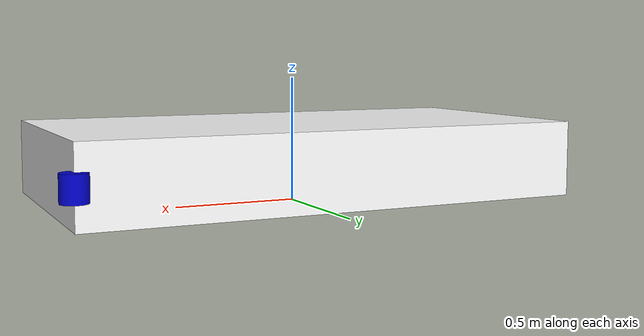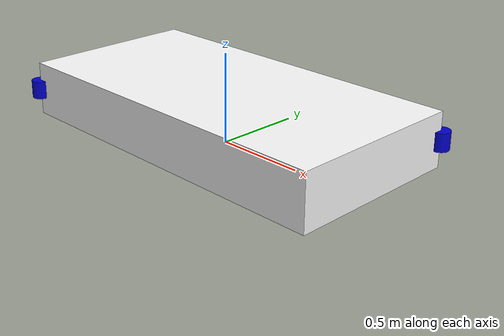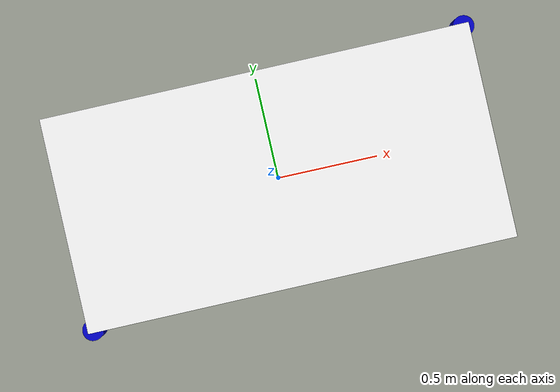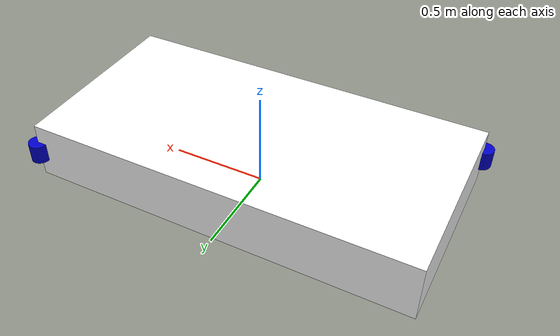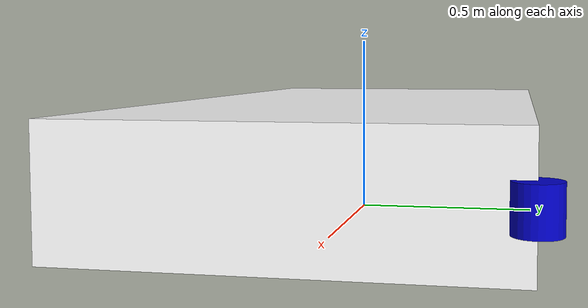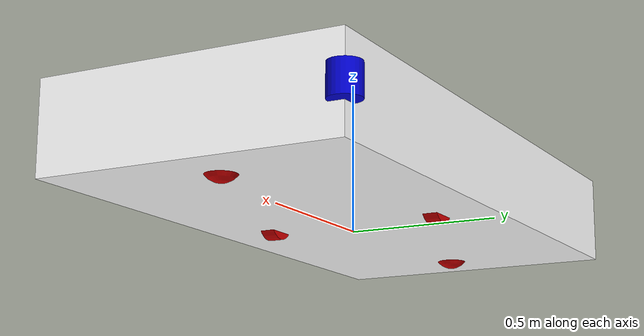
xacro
<?xml version="1.0"?>
<robot xmlns:xacro="http://www.ros.org/wiki/xacro" name="diff_vehicle">
    <!-- VEHICLE DIMENSIONS -->
    <xacro:property name="vehicle_length" value="2.0" />
    <xacro:property name="vehicle_width" value="1.0" />
    <xacro:property name="vehicle_height" value="0.3" />
    <xacro:property name="ground_clearance" value="0.025" />

    <!-- WHEEL SETUP -->
    <xacro:property name="wheel_diameter" value="0.13" />
    <xacro:property name="wheel_width" value="0.05" />

    <xacro:property name="wheel_0_origin_x" value="0.0" />
    <xacro:property name="wheel_0_origin_y" value="${0.3 * vehicle_width}" />
    <xacro:property name="wheel_0_origin_z" value="${-(ground_clearance + vehicle_height / 2 - wheel_diameter / 2)}" />

    <xacro:property name="wheel_1_origin_x" value="0.0" />
    <xacro:property name="wheel_1_origin_y" value="${-0.3 * vehicle_width}" />
    <xacro:property name="wheel_1_origin_z" value="${-(ground_clearance + vehicle_height / 2 - wheel_diameter / 2)}" />

    <xacro:property name="roller_0_origin_x" value="${0.4 * vehicle_length}" />
    <xacro:property name="roller_0_origin_y" value="0.0" />
    <xacro:property name="roller_0_origin_z" value="${-(ground_clearance + vehicle_height / 2 - wheel_diameter / 2)}" />

    <xacro:property name="roller_1_origin_x" value="${-0.4 * vehicle_length}" />
    <xacro:property name="roller_1_origin_y" value="0.0" />
    <xacro:property name="roller_1_origin_z" value="${-(ground_clearance + vehicle_height / 2 - wheel_diameter / 2)}" />

    <!-- SENSOR SETUP -->
    <xacro:property name="scanner_0_origin_x" value="${0.5 * vehicle_length}" />
    <xacro:property name="scanner_0_origin_y" value="${0.5 * vehicle_width}" />
    <xacro:property name="scanner_0_origin_z" value="0.0" />

    <xacro:property name="scanner_1_origin_x" value="${-0.5 * vehicle_length}" />
    <xacro:property name="scanner_1_origin_y" value="${-0.5 * vehicle_width}" />
    <xacro:property name="scanner_1_origin_z" value="0.0" />

    <!-- GAZEBO INCLUDE -->
    <xacro:include filename="$(find diff_description)/urdf/main.gazebo.xacro" />

    <!-- COMMON INCLUDES -->
    <xacro:include filename="$(find common_description)/urdf/colors.xacro" />
    <xacro:include filename="$(find common_description)/urdf/constants.xacro" />
    <xacro:include filename="$(find common_description)/urdf/driven_wheel.urdf.xacro" />
    <xacro:include filename="$(find common_description)/urdf/free_wheel.urdf.xacro" />
    <xacro:include filename="$(find common_description)/urdf/sensors/sick_nanoscan3.urdf.xacro" />
    <xacro:include filename="$(find common_description)/urdf/sensors/unknown_imu.urdf.xacro" />

    <!-- SD VEHICLE INCLUDES -->
    <xacro:include filename="$(find diff_description)/urdf/base.urdf.xacro" />

    <!-- BASE -->
    <xacro:base_setup />

    <!-- DRIVEN WHEELS -->
    <xacro:driven_wheel name="left_wheel" parent="base_link">
        <origin xyz="${wheel_0_origin_x} ${wheel_0_origin_y} ${wheel_0_origin_z}" rpy="${M_PI / 2} ${M_PI / 2} ${M_PI}" />
    </xacro:driven_wheel>

    <xacro:driven_wheel name="right_wheel" parent="base_link">
        <origin xyz="${wheel_1_origin_x} ${wheel_1_origin_y} ${wheel_1_origin_z}" rpy="${M_PI / 2} ${M_PI / 2} ${M_PI}" />
    </xacro:driven_wheel>

    <!-- FREE WHEELS -->
    <xacro:free_wheel name="front_roller" parent="base_link">
        <origin xyz="${roller_0_origin_x} ${roller_0_origin_y} ${roller_0_origin_z}" rpy="0.0 0.0 0.0" />
    </xacro:free_wheel>

    <xacro:free_wheel name="rear_roller" parent="base_link">
        <origin xyz="${roller_1_origin_x} ${roller_1_origin_y} ${roller_1_origin_z}" rpy="0.0 0.0 0.0" />
    </xacro:free_wheel>

    <!-- SENSORS -->
    <xacro:sick_nanoscan3 name="front_scanner" parent="base_link" ros_topic="scan_front">
        <origin xyz="${scanner_0_origin_x} ${scanner_0_origin_y} ${scanner_0_origin_z}" rpy="0.0 0.0 ${-0.5 * M_PI}"/>
    </xacro:sick_nanoscan3>

    <xacro:sick_nanoscan3 name="rear_scanner" parent="base_link" ros_topic="scan_rear">
        <origin xyz="${scanner_1_origin_x} ${scanner_1_origin_y} ${scanner_1_origin_z}" rpy="0.0 0.0 ${0.5 * M_PI}"/>
    </xacro:sick_nanoscan3>

    <xacro:unknown_imu name="imu" parent="base_link" ros_topic="imu">
        <origin xyz="0.0 0.0 0.0" rpy="0.0 0.0 0.0"/>
    </xacro:unknown_imu>

</robot>

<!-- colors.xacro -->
<!-- Source: https://github.com/ROBOTIS-GIT/turtlebot3/blob/master/turtlebot3_description/urdf/common_properties.xacro-->

<robot name="xacro_properties" xmlns:xacro="http://ros.org/wiki/xacro">

  <!-- Init colour -->
  <material name="black">
      <color rgba="0.0 0.0 0.0 1.0"/>
  </material>

  <material name="dark">
    <color rgba="0.3 0.3 0.3 1.0"/>
  </material>
  <material name="light_black">
    <color rgba="0.4 0.4 0.4 1.0"/>
  </material>

  <material name="blue">
    <color rgba="0.0 0.0 0.8 1.0"/>
  </material>

  <material name="green">
    <color rgba="0.0 0.8 0.0 1.0"/>
  </material>

  <material name="grey">
    <color rgba="0.5 0.5 0.5 1.0"/>
  </material>

  <material name="orange">
    <color rgba="${255/255} ${108/255} ${10/255} 1.0"/>
  </material>

  <material name="brown">
    <color rgba="${222/255} ${207/255} ${195/255} 1.0"/>
  </material>

  <material name="red">
    <color rgba="0.8 0.0 0.0 1.0"/>
  </material>

  <material name="white">
    <color rgba="1.0 1.0 1.0 1.0"/>
  </material>
</robot>

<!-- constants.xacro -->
<robot xmlns:xacro="http://www.ros.org/wiki/xacro">

    <xacro:property name="M_PI" value="3.14159265359" />

</robot>

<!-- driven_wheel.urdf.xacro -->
<robot xmlns:xacro="http://www.ros.org/wiki/xacro">

    <xacro:macro name="driven_wheel" params="name parent *origin">
        <link name="${name}_drive_link">
            <inertial>
                <mass value="0.001" />
                <origin xyz="0 0 0" rpy="0 0 0" />
                <inertia ixx="0.0001" ixy="0" ixz="0" iyy="0.000001" iyz="0" izz="0.0001" />
            </inertial>

            <visual>
                <origin xyz="0.0 0.0 0.0" rpy="0.0 0.0 0.0"/>
                <geometry>
                    <!--mesh filename="file:///$(find pia-description)/meshes/mecanum_wheel_right.stl" scale="0.001 0.001 0.001"/-->
                    <cylinder radius="${wheel_diameter / 2}" length="${wheel_width}" />
                </geometry>
                <material name="red" />
            </visual>

            <collision>
                <origin xyz="0.0 0.0 0.0" rpy="0.0 0.0 0.0"/>
                <geometry>
                    <cylinder radius="${wheel_diameter / 2}" length="${wheel_width}" />
                </geometry>
            </collision>
        </link>

        <joint name="${name}_drive_joint" type="continuous">
            <parent link="${parent}"/>
            <child link="${name}_drive_link"/>
            <xacro:insert_block name="origin" />
            <axis xyz="0 0 1" />
        </joint>
    </xacro:macro>
</robot>

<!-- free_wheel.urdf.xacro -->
<robot xmlns:xacro="http://www.ros.org/wiki/xacro">

    <xacro:macro name="free_wheel" params="name parent *origin">
        <link name="${name}_link">
            <inertial>
                <mass value="0.001" />
                <origin xyz="0 0 0" rpy="0 0 0" />
                <inertia ixx="0.0001" ixy="0" ixz="0" iyy="0.000001" iyz="0" izz="0.0001" />
            </inertial>

            <visual>
                <origin xyz="0.0 0.0 0.0" rpy="0.0 0.0 0.0"/>
                <geometry>
                    <!--mesh filename="file:///$(find pia-description)/meshes/mecanum_wheel_right.stl" scale="0.001 0.001 0.001"/-->
                    <sphere radius="${wheel_diameter / 2}" />
                </geometry>
                <material name="red" />
            </visual>

            <collision>
                <origin xyz="0.0 0.0 0.0" rpy="0.0 0.0 0.0"/>
                <geometry>
                    <sphere radius="${wheel_diameter / 2}" />
                </geometry>
            </collision>
        </link>

        <joint name="${name}_joint" type="fixed">
            <parent link="${parent}"/>
            <child link="${name}_link"/>
            <xacro:insert_block name="origin" />
        </joint>
    </xacro:macro>
</robot>

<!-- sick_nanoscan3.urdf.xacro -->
<robot xmlns:xacro="http://www.ros.org/wiki/xacro">

    <xacro:include filename="$(find common_description)/urdf/sensors/laser_scanner.gazebo.xacro" />

    <xacro:macro name="sick_nanoscan3" params="name parent *origin ros_topic">
        <xacro:property name="update_rate" value="25.0" />
        <!--xacro:property name="min_angle" value="${-0.131944444 * 2 * M_PI}" /-->
        <!--xacro:property name="max_angle" value="${0.631944444 * 2 * M_PI}" /-->
        <xacro:property name="min_angle" value="0.0" />
        <xacro:property name="max_angle" value="${0.763888889 * 2 * M_PI}" />
        <xacro:property name="samples" value="2200" />

        <joint name="${name}_joint" type="fixed">
            <xacro:insert_block name="origin" />
            <parent link="${parent}"/>
            <child link="${name}_link"/>
        </joint>

        <link name="${name}_link" type="fixed">
            <visual>
                <origin xyz="0.0 0.0 0.0" rpy="0.0 0.0 0.0"/>
                <geometry>
                    <!--mesh filename="file:///$(find pia-description)/meshes/mecanum_wheel_right.stl" scale="0.001 0.001 0.001"/-->
                    <cylinder radius="0.05" length="0.10" />
                </geometry>
                <material name="blue" />
            </visual>
            <inertial>
                <mass value="0.001" />
                <origin xyz="0 0 0" rpy="0 0 0" />
                <inertia ixx="0.0001" ixy="0" ixz="0" iyy="0.000001" iyz="0" izz="0.0001" />
            </inertial>
        </link>
        <!-- gazebo extensions -->
        <xacro:laser_scanner_gazebo name="${name}" ros_topic="${ros_topic}" update_rate="${update_rate}" min_angle="${min_angle}" max_angle="${max_angle}" samples="${samples}" />
    </xacro:macro>
</robot>

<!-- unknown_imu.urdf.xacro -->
<robot xmlns:xacro="http://www.ros.org/wiki/xacro">

    <xacro:include filename="$(find common_description)/urdf/sensors/imu.gazebo.xacro" />

    <xacro:macro name="unknown_imu" params="name parent *origin ros_topic">
        <xacro:property name="update_rate" value="50.0" />

        <joint name="${name}_joint" type="fixed">
            <xacro:insert_block name="origin" />
            <parent link="${parent}"/>
            <child link="${name}_link"/>
        </joint>

        <link name="${name}_link" type="fixed">
            <visual>
                <origin xyz="0.0 0.0 0.0" rpy="0.0 0.0 0.0"/>
                <geometry>
                    <!--mesh filename="file:///$(find pia-description)/meshes/mecanum_wheel_right.stl" scale="0.001 0.001 0.001"/-->
                    <box size="0.05 0.05 0.01" />
                </geometry>
                <material name="blue" />
            </visual>
            <inertial>
                <mass value="0.001" />
                <origin xyz="0 0 0" rpy="0 0 0" />
                <inertia ixx="0.0001" ixy="0" ixz="0" iyy="0.000001" iyz="0" izz="0.0001" />
            </inertial>
        </link>
        <!-- gazebo extensions -->
        <xacro:imu_gazebo name="${name}" ros_topic="${ros_topic}" update_rate="${update_rate}" />
    </xacro:macro>
</robot>

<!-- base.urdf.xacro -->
<robot xmlns:xacro="http://www.ros.org/wiki/xacro">

    <!--xacro:macro name="base_setup" params="vehicle_length vehicle_width vehicle_height ground_clearance"-->
    <xacro:macro name="base_setup">
        <link name="base_footprint" />

        <joint name="base_joint" type="fixed">
            <parent link="base_footprint" />
            <child link="base_link" />
            <origin xyz="0.0 0.0 ${vehicle_height / 2 + ground_clearance}" rpy="0.0 0.0 0.0" />
        </joint>

        <link name="base_link">
            <visual>
                <origin xyz="0.0 0 0.0" rpy="0.0 0.0 0.0" />
                <geometry>
                    <!--mesh filename="package://turtlebot3_description/meshes/bases/burger_base.stl" scale="0.001 0.001 0.001"/-->
                    <box size="${vehicle_length} ${vehicle_width} ${vehicle_height}" />
                </geometry>
                <material name="white" />
            </visual>

            <inertial>
                <origin xyz="0 0 0" rpy="0 0 0" />
                <mass value="8.2573504e-01" />
                <inertia ixx="2.2124416e-03" ixy="-1.2294101e-05" ixz="3.4938785e-05"
                         iyy="2.1193702e-03" iyz="-5.0120904e-06"
                         izz="2.0064271e-03" />
            </inertial>
        </link>
    </xacro:macro>
</robot>
